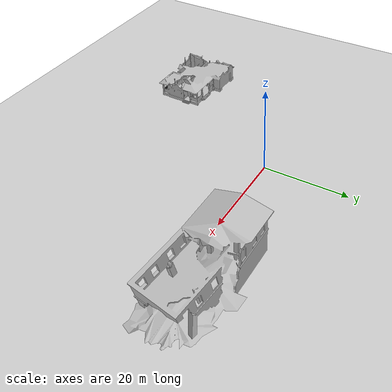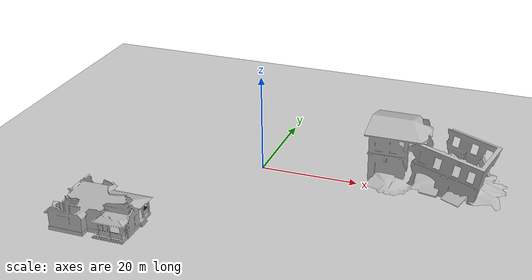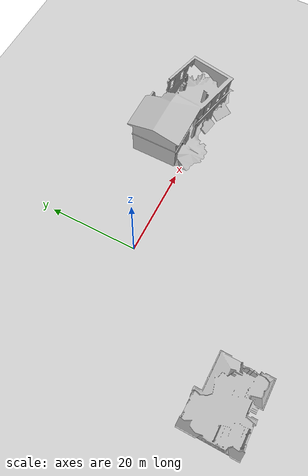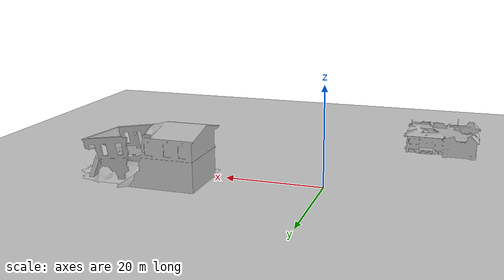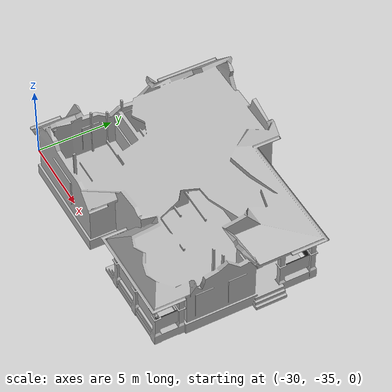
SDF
<sdf version="1.6">
 <world name="default">
  <light name="sun" type="directional">
   <pose>0 0 20 0 -0 0</pose>
   <diffuse>1 1 1 1</diffuse>
   <specular>0.8 0.8 0.8 1</specular>
   <attenuation>
    <range>1000</range>
    <constant>0.9</constant>
    <linear>0.01</linear>
    <quadratic>0.001</quadratic>
   </attenuation>
   <direction>-0.5 0.1 -0.9</direction>
  </light>
  <gravity>0 0 -9.8</gravity>
  <magnetic_field>6e-06 2.3e-05 -4.2e-05</magnetic_field>
  <atmosphere type="adiabatic"/>
  <physics name="default_physics" default="0" type="ode">
   <max_step_size>0.001</max_step_size>
   <real_time_factor>1</real_time_factor>
   <real_time_update_rate>1000</real_time_update_rate>
  </physics>
  <scene>
   <ambient>0.4 0.4 0.4 1</ambient>
   <background>0.7 0.7 0.7 1</background>
   <shadows>true</shadows>
   <sky>
    <clouds>
     <speed>0.6</speed>
     <humidity>0.6</humidity>
     <mean_size>0.5</mean_size>
     <ambient>0.8 0.8 0.8 1</ambient>
    </clouds>
   </sky>
  </scene>
  <spherical_coordinates>
   <surface_model>EARTH_WGS84</surface_model>
   <latitude_deg>0</latitude_deg>
   <longitude_deg>0</longitude_deg>
   <elevation>0</elevation>
   <heading_deg>0</heading_deg>
  </spherical_coordinates>
  <include><uri>model://ground_plane</uri></include>
  <include><uri>model://ground</uri></include>
  <include><uri>model://collapsed_house</uri><pose>-20 -30 0.8 0 -0 0</pose></include>
  <include><uri>model://collapsed_fire_station</uri><pose>35 5 1 0 -0 0</pose></include>
 </world>
</sdf>

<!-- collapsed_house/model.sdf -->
<sdf version='1.6'>
  <model name='collapsed_house2'>
    <link name='link'>
      <self_collide>0</self_collide>
      <enable_wind>0</enable_wind>
      <kinematic>0</kinematic>
      <pose frame=''>0 0 0 0 -0 0</pose>
      <visual name='visual'>
        <geometry>
          <mesh>
            <scale>1.5 1.5 1.5</scale>
            <uri>model://collapsed_house/meshes/collapsed_house.dae</uri>
          </mesh>
        </geometry>
        <pose frame=''>0 0 0 0 -0 0</pose>
        <transparency>0</transparency>
        <cast_shadows>1</cast_shadows>
      </visual>
      <collision name='collision'>
        <laser_retro>0</laser_retro>
        <max_contacts>10</max_contacts>
        <pose frame=''>0 0 0 0 -0 0</pose>
        <geometry>
          <mesh>
            <uri>/home/marceloSimon/usar_multirobot/src/usar_gazebo/models/collapsed_house/meshes/collapsed_house.dae</uri>
            <scale>1.5 1.5 1.5</scale>
          </mesh>
        </geometry>
        <surface>
          <friction>
            <ode>
              <mu>1</mu>
              <mu2>1</mu2>
              <fdir1>0 0 0</fdir1>
              <slip1>0</slip1>
              <slip2>0</slip2>
            </ode>
            <torsional>
              <coefficient>1</coefficient>
              <patch_radius>0</patch_radius>
              <surface_radius>0</surface_radius>
              <use_patch_radius>1</use_patch_radius>
              <ode>
                <slip>0</slip>
              </ode>
            </torsional>
          </friction>
          <bounce>
            <restitution_coefficient>0</restitution_coefficient>
            <threshold>1e+06</threshold>
          </bounce>
          <contact>
            <collide_without_contact>0</collide_without_contact>
            <collide_without_contact_bitmask>1</collide_without_contact_bitmask>
            <collide_bitmask>1</collide_bitmask>
            <ode>
              <soft_cfm>0</soft_cfm>
              <soft_erp>0.2</soft_erp>
              <kp>1e+13</kp>
              <kd>1</kd>
              <max_vel>0.01</max_vel>
              <min_depth>0</min_depth>
            </ode>
            <bullet>
              <split_impulse>1</split_impulse>
              <split_impulse_penetration_threshold>-0.01</split_impulse_penetration_threshold>
              <soft_cfm>0</soft_cfm>
              <soft_erp>0.2</soft_erp>
              <kp>1e+13</kp>
              <kd>1</kd>
            </bullet>
          </contact>
        </surface>
      </collision>
    </link>
    <link name='link_0'>
      <inertial>
        <mass>0.0586522</mass>
        <inertia>
          <ixx>0.00308143</ixx>
          <ixy>0</ixy>
          <ixz>0</ixz>
          <iyy>0.012942</iyy>
          <iyz>0</iyz>
          <izz>0.00988712</izz>
        </inertia>
        <pose frame=''>0 0 0 0 -0 0</pose>
      </inertial>
      <pose frame=''>7.16592 -5.06526 1.47989 0 -0 1.57</pose>
      <self_collide>0</self_collide>
      <enable_wind>0</enable_wind>
      <kinematic>0</kinematic>
      <gravity>1</gravity>
      <visual name='visual'>
        <pose frame=''>0 0 0 0 -0 0</pose>
        <geometry>
          <box>
            <size>1.42132 0.052076 0.792297</size>
          </box>
        </geometry>
        <material>
          <lighting>1</lighting>
          <script>
            <uri>file://media/materials/scripts/gazebo.material</uri>
            <name>Gazebo/Black</name>
          </script>
          <shader type='vertex'>
            <normal_map>__default__</normal_map>
          </shader>
          <ambient>0.3 0.3 0.3 1</ambient>
          <diffuse>0.7 0.7 0.7 1</diffuse>
          <specular>0.01 0.01 0.01 1</specular>
          <emissive>0 0 0 1</emissive>
        </material>
        <transparency>0</transparency>
        <cast_shadows>1</cast_shadows>
      </visual>
      <collision name='collision'>
        <laser_retro>0</laser_retro>
        <max_contacts>10</max_contacts>
        <pose frame=''>0 0 0 0 -0 0</pose>
        <geometry>
          <box>
            <size>1.42132 0.052076 0.792297</size>
          </box>
        </geometry>
        <surface>
          <friction>
            <ode>
              <mu>1</mu>
              <mu2>1</mu2>
              <fdir1>0 0 0</fdir1>
              <slip1>0</slip1>
              <slip2>0</slip2>
            </ode>
            <torsional>
              <coefficient>1</coefficient>
              <patch_radius>0</patch_radius>
              <surface_radius>0</surface_radius>
              <use_patch_radius>1</use_patch_radius>
              <ode>
                <slip>0</slip>
              </ode>
            </torsional>
          </friction>
          <bounce>
            <restitution_coefficient>0</restitution_coefficient>
            <threshold>1e+06</threshold>
          </bounce>
          <contact>
            <collide_without_contact>0</collide_without_contact>
            <collide_without_contact_bitmask>1</collide_without_contact_bitmask>
            <collide_bitmask>1</collide_bitmask>
            <ode>
              <soft_cfm>0</soft_cfm>
              <soft_erp>0.2</soft_erp>
              <kp>1e+13</kp>
              <kd>1</kd>
              <max_vel>0.01</max_vel>
              <min_depth>0</min_depth>
            </ode>
            <bullet>
              <split_impulse>1</split_impulse>
              <split_impulse_penetration_threshold>-0.01</split_impulse_penetration_threshold>
              <soft_cfm>0</soft_cfm>
              <soft_erp>0.2</soft_erp>
              <kp>1e+13</kp>
              <kd>1</kd>
            </bullet>
          </contact>
        </surface>
      </collision>
    </link>
    <link name='link_0_clone'>
      <inertial>
        <mass>0.211219</mass>
        <inertia>
          <ixx>0.0141636</ixx>
          <ixy>0</ixy>
          <ixz>0</ixz>
          <iyy>0.375073</iyy>
          <iyz>0</iyz>
          <izz>0.361005</izz>
        </inertia>
        <pose frame=''>0 0 0 0 -0 0</pose>
      </inertial>
      <pose frame=''>4.86715 -5.76812 1.42599 0 -0 3.14</pose>
      <self_collide>0</self_collide>
      <enable_wind>0</enable_wind>
      <kinematic>0</kinematic>
      <gravity>1</gravity>
      <visual name='visual'>
        <pose frame=''>0 0 0 0 -0 0</pose>
        <geometry>
          <box>
            <size>4.52848 0.052076 0.895526</size>
          </box>
        </geometry>
        <material>
          <lighting>1</lighting>
          <script>
            <uri>file://media/materials/scripts/gazebo.material</uri>
            <name>Gazebo/Black</name>
          </script>
          <shader type='pixel'>
            <normal_map>__default__</normal_map>
          </shader>
          <ambient>0 0 0 1</ambient>
          <diffuse>0 0 0 1</diffuse>
          <specular>0.1 0.1 0.1 1</specular>
          <emissive>0 0 0 1</emissive>
        </material>
        <transparency>0</transparency>
        <cast_shadows>1</cast_shadows>
      </visual>
      <collision name='collision'>
        <laser_retro>0</laser_retro>
        <max_contacts>10</max_contacts>
        <pose frame=''>0 0 0 0 -0 0</pose>
        <geometry>
          <box>
            <size>4.52848 0.052076 0.895526</size>
          </box>
        </geometry>
        <surface>
          <friction>
            <ode>
              <mu>1</mu>
              <mu2>1</mu2>
              <fdir1>0 0 0</fdir1>
              <slip1>0</slip1>
              <slip2>0</slip2>
            </ode>
            <torsional>
              <coefficient>1</coefficient>
              <patch_radius>0</patch_radius>
              <surface_radius>0</surface_radius>
              <use_patch_radius>1</use_patch_radius>
              <ode>
                <slip>0</slip>
              </ode>
            </torsional>
          </friction>
          <bounce>
            <restitution_coefficient>0</restitution_coefficient>
            <threshold>1e+06</threshold>
          </bounce>
          <contact>
            <collide_without_contact>0</collide_without_contact>
            <collide_without_contact_bitmask>1</collide_without_contact_bitmask>
            <collide_bitmask>1</collide_bitmask>
            <ode>
              <soft_cfm>0</soft_cfm>
              <soft_erp>0.2</soft_erp>
              <kp>1e+13</kp>
              <kd>1</kd>
              <max_vel>0.01</max_vel>
              <min_depth>0</min_depth>
            </ode>
            <bullet>
              <split_impulse>1</split_impulse>
              <split_impulse_penetration_threshold>-0.01</split_impulse_penetration_threshold>
              <soft_cfm>0</soft_cfm>
              <soft_erp>0.2</soft_erp>
              <kp>1e+13</kp>
              <kd>1</kd>
            </bullet>
          </contact>
        </surface>
      </collision>
    </link>
    <link name='link_0_clone_0'>
      <inertial>
        <mass>0.0897248</mass>
        <inertia>
          <ixx>0.00496172</ixx>
          <ixy>0</ixy>
          <ixz>0</ixz>
          <iyy>0.0385165</iyy>
          <iyz>0</iyz>
          <izz>0.0335953</izz>
        </inertia>
        <pose frame=''>0 0 0 0 -0 0</pose>
      </inertial>
      <pose frame=''>5.97433 4.32289 1.47091 0 -0 3.14</pose>
      <self_collide>0</self_collide>
      <enable_wind>0</enable_wind>
      <kinematic>0</kinematic>
      <gravity>1</gravity>
      <visual name='visual'>
        <pose frame=''>0 0 0 0 -0 0</pose>
        <geometry>
          <box>
            <size>2.11906 0.052076 0.812945</size>
          </box>
        </geometry>
        <material>
          <lighting>1</lighting>
          <script>
            <uri>file://media/materials/scripts/gazebo.material</uri>
            <name>Gazebo/Black</name>
          </script>
          <shader type='pixel'>
            <normal_map>__default__</normal_map>
          </shader>
          <ambient>0.3 0.3 0.3 1</ambient>
          <diffuse>0.7 0.7 0.7 1</diffuse>
          <specular>0.01 0.01 0.01 1</specular>
          <emissive>0 0 0 1</emissive>
        </material>
        <transparency>0</transparency>
        <cast_shadows>1</cast_shadows>
      </visual>
      <collision name='collision'>
        <laser_retro>0</laser_retro>
        <max_contacts>10</max_contacts>
        <pose frame=''>0 0 0 0 -0 0</pose>
        <geometry>
          <box>
            <size>2.11906 0.052076 0.812945</size>
          </box>
        </geometry>
        <surface>
          <friction>
            <ode>
              <mu>1</mu>
              <mu2>1</mu2>
              <fdir1>0 0 0</fdir1>
              <slip1>0</slip1>
              <slip2>0</slip2>
            </ode>
            <torsional>
              <coefficient>1</coefficient>
              <patch_radius>0</patch_radius>
              <surface_radius>0</surface_radius>
              <use_patch_radius>1</use_patch_radius>
              <ode>
                <slip>0</slip>
              </ode>
            </torsional>
          </friction>
          <bounce>
            <restitution_coefficient>0</restitution_coefficient>
            <threshold>1e+06</threshold>
          </bounce>
          <contact>
            <collide_without_contact>0</collide_without_contact>
            <collide_without_contact_bitmask>1</collide_without_contact_bitmask>
            <collide_bitmask>1</collide_bitmask>
            <ode>
              <soft_cfm>0</soft_cfm>
              <soft_erp>0.2</soft_erp>
              <kp>1e+13</kp>
              <kd>1</kd>
              <max_vel>0.01</max_vel>
              <min_depth>0</min_depth>
            </ode>
            <bullet>
              <split_impulse>1</split_impulse>
              <split_impulse_penetration_threshold>-0.01</split_impulse_penetration_threshold>
              <soft_cfm>0</soft_cfm>
              <soft_erp>0.2</soft_erp>
              <kp>1e+13</kp>
              <kd>1</kd>
            </bullet>
          </contact>
        </surface>
      </collision>
    </link>
    <link name='link_0_clone_0_clone'>
      <inertial>
        <mass>0.0897248</mass>
        <inertia>
          <ixx>0.00496172</ixx>
          <ixy>0</ixy>
          <ixz>0</ixz>
          <iyy>0.0385165</iyy>
          <iyz>0</iyz>
          <izz>0.0335953</izz>
        </inertia>
        <pose frame=''>0 0 0 0 -0 0</pose>
      </inertial>
      <pose frame=''>7.16719 3.30743 1.47091 0 0 -1.57319</pose>
      <self_collide>0</self_collide>
      <enable_wind>0</enable_wind>
      <kinematic>0</kinematic>
      <gravity>1</gravity>
      <visual name='visual'>
        <pose frame=''>0 0 0 0 -0 0</pose>
        <geometry>
          <box>
            <size>2.11906 0.052076 0.812945</size>
          </box>
        </geometry>
        <material>
          <lighting>1</lighting>
          <script>
            <uri>file://media/materials/scripts/gazebo.material</uri>
            <name>Gazebo/Black</name>
          </script>
          <shader type='pixel'>
            <normal_map>__default__</normal_map>
          </shader>
          <ambient>0 0 0 1</ambient>
          <diffuse>0 0 0 1</diffuse>
          <specular>0.1 0.1 0.1 1</specular>
          <emissive>0 0 0 1</emissive>
        </material>
        <transparency>0</transparency>
        <cast_shadows>1</cast_shadows>
      </visual>
      <collision name='collision'>
        <laser_retro>0</laser_retro>
        <max_contacts>10</max_contacts>
        <pose frame=''>0 0 0 0 -0 0</pose>
        <geometry>
          <box>
            <size>2.11906 0.052076 0.812945</size>
          </box>
        </geometry>
        <surface>
          <friction>
            <ode>
              <mu>1</mu>
              <mu2>1</mu2>
              <fdir1>0 0 0</fdir1>
              <slip1>0</slip1>
              <slip2>0</slip2>
            </ode>
            <torsional>
              <coefficient>1</coefficient>
              <patch_radius>0</patch_radius>
              <surface_radius>0</surface_radius>
              <use_patch_radius>1</use_patch_radius>
              <ode>
                <slip>0</slip>
              </ode>
            </torsional>
          </friction>
          <bounce>
            <restitution_coefficient>0</restitution_coefficient>
            <threshold>1e+06</threshold>
          </bounce>
          <contact>
            <collide_without_contact>0</collide_without_contact>
            <collide_without_contact_bitmask>1</collide_without_contact_bitmask>
            <collide_bitmask>1</collide_bitmask>
            <ode>
              <soft_cfm>0</soft_cfm>
              <soft_erp>0.2</soft_erp>
              <kp>1e+13</kp>
              <kd>1</kd>
              <max_vel>0.01</max_vel>
              <min_depth>0</min_depth>
            </ode>
            <bullet>
              <split_impulse>1</split_impulse>
              <split_impulse_penetration_threshold>-0.01</split_impulse_penetration_threshold>
              <soft_cfm>0</soft_cfm>
              <soft_erp>0.2</soft_erp>
              <kp>1e+13</kp>
              <kd>1</kd>
            </bullet>
          </contact>
        </surface>
      </collision>
    </link>
    <static>1</static>
    <allow_auto_disable>1</allow_auto_disable>
  </model>
</sdf>

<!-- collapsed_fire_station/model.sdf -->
<sdf version='1.6'>
  <model name='collapsed_fire_station'>
    <link name='link'>
      <self_collide>0</self_collide>
      <enable_wind>0</enable_wind>
      <kinematic>0</kinematic>
      <pose frame=''>0 0 0 0 -0 0</pose>
      <visual name='visual'>
        <geometry>
          <mesh>
            <uri>model://collapsed_fire_station/meshes/collapsed_fire_station.dae</uri>
          </mesh>
        </geometry>
        <pose frame=''>0 0 0 0 -0 0</pose>
        <transparency>0</transparency>
        <cast_shadows>1</cast_shadows>
      </visual>
      <collision name='collision'>
        <laser_retro>0</laser_retro>
        <max_contacts>10</max_contacts>
        <pose frame=''>0 0 0 0 -0 0</pose>
        <geometry>
          <mesh>
            <uri>/home/marceloSimon/usar_multirobot/src/usar_gazebo/models/collapsed_fire_station/meshes/collapsed_fire_station.dae</uri>
            <scale>1 1 1</scale>
          </mesh>
        </geometry>
        <surface>
          <friction>
            <ode>
              <mu>1</mu>
              <mu2>1</mu2>
              <fdir1>0 0 0</fdir1>
              <slip1>0</slip1>
              <slip2>0</slip2>
            </ode>
            <torsional>
              <coefficient>1</coefficient>
              <patch_radius>0</patch_radius>
              <surface_radius>0</surface_radius>
              <use_patch_radius>1</use_patch_radius>
              <ode>
                <slip>0</slip>
              </ode>
            </torsional>
          </friction>
          <bounce>
            <restitution_coefficient>0</restitution_coefficient>
            <threshold>1e+06</threshold>
          </bounce>
          <contact>
            <collide_without_contact>0</collide_without_contact>
            <collide_without_contact_bitmask>1</collide_without_contact_bitmask>
            <collide_bitmask>1</collide_bitmask>
            <ode>
              <soft_cfm>0</soft_cfm>
              <soft_erp>0.2</soft_erp>
              <kp>1e+13</kp>
              <kd>1</kd>
              <max_vel>0.01</max_vel>
              <min_depth>0</min_depth>
            </ode>
            <bullet>
              <split_impulse>1</split_impulse>
              <split_impulse_penetration_threshold>-0.01</split_impulse_penetration_threshold>
              <soft_cfm>0</soft_cfm>
              <soft_erp>0.2</soft_erp>
              <kp>1e+13</kp>
              <kd>1</kd>
            </bullet>
          </contact>
        </surface>
      </collision>
    </link>
    <link name='link_1'>
      <inertial>
        <mass>1.43754</mass>
        <inertia>
          <ixx>6.70119</ixx>
          <ixy>0</ixy>
          <ixz>0</ixz>
          <iyy>4.05151</iyy>
          <iyz>0</iyz>
          <izz>2.65036</izz>
        </inertia>
        <pose frame=''>0 0 0 0 -0 0</pose>
      </inertial>
      <pose frame=''>-10.0033 -3.10849 1.5 0 0 -1.57426</pose>
      <self_collide>0</self_collide>
      <enable_wind>0</enable_wind>
      <kinematic>0</kinematic>
      <visual name='visual'>
        <pose frame=''>0 0 0 0 -0 0</pose>
        <geometry>
          <box>
            <size>0.053193 4.70333 5.81528</size>
          </box>
        </geometry>
        <material>
          <lighting>1</lighting>
          <script>
            <uri>file://media/materials/scripts/gazebo.material</uri>
            <name>Gazebo/Grey</name>
          </script>
        </material>
        <transparency>0</transparency>
        <cast_shadows>1</cast_shadows>
      </visual>
      <collision name='collision'>
        <laser_retro>0</laser_retro>
        <max_contacts>10</max_contacts>
        <pose frame=''>0 0 0 0 -0 0</pose>
        <geometry>
          <box>
            <size>0.053193 4.70333 5.81528</size>
          </box>
        </geometry>
        <surface>
          <friction>
            <ode>
              <mu>1</mu>
              <mu2>1</mu2>
              <fdir1>0 0 0</fdir1>
              <slip1>0</slip1>
              <slip2>0</slip2>
            </ode>
            <torsional>
              <coefficient>1</coefficient>
              <patch_radius>0</patch_radius>
              <surface_radius>0</surface_radius>
              <use_patch_radius>1</use_patch_radius>
              <ode>
                <slip>0</slip>
              </ode>
            </torsional>
          </friction>
          <bounce>
            <restitution_coefficient>0</restitution_coefficient>
            <threshold>1e+06</threshold>
          </bounce>
          <contact>
            <collide_without_contact>0</collide_without_contact>
            <collide_without_contact_bitmask>1</collide_without_contact_bitmask>
            <collide_bitmask>1</collide_bitmask>
            <ode>
              <soft_cfm>0</soft_cfm>
              <soft_erp>0.2</soft_erp>
              <kp>1e+13</kp>
              <kd>1</kd>
              <max_vel>0.01</max_vel>
              <min_depth>0</min_depth>
            </ode>
            <bullet>
              <split_impulse>1</split_impulse>
              <split_impulse_penetration_threshold>-0.01</split_impulse_penetration_threshold>
              <soft_cfm>0</soft_cfm>
              <soft_erp>0.2</soft_erp>
              <kp>1e+13</kp>
              <kd>1</kd>
            </bullet>
          </contact>
        </surface>
      </collision>
    </link>
    <static>1</static>
    <allow_auto_disable>1</allow_auto_disable>
  </model>
</sdf>
